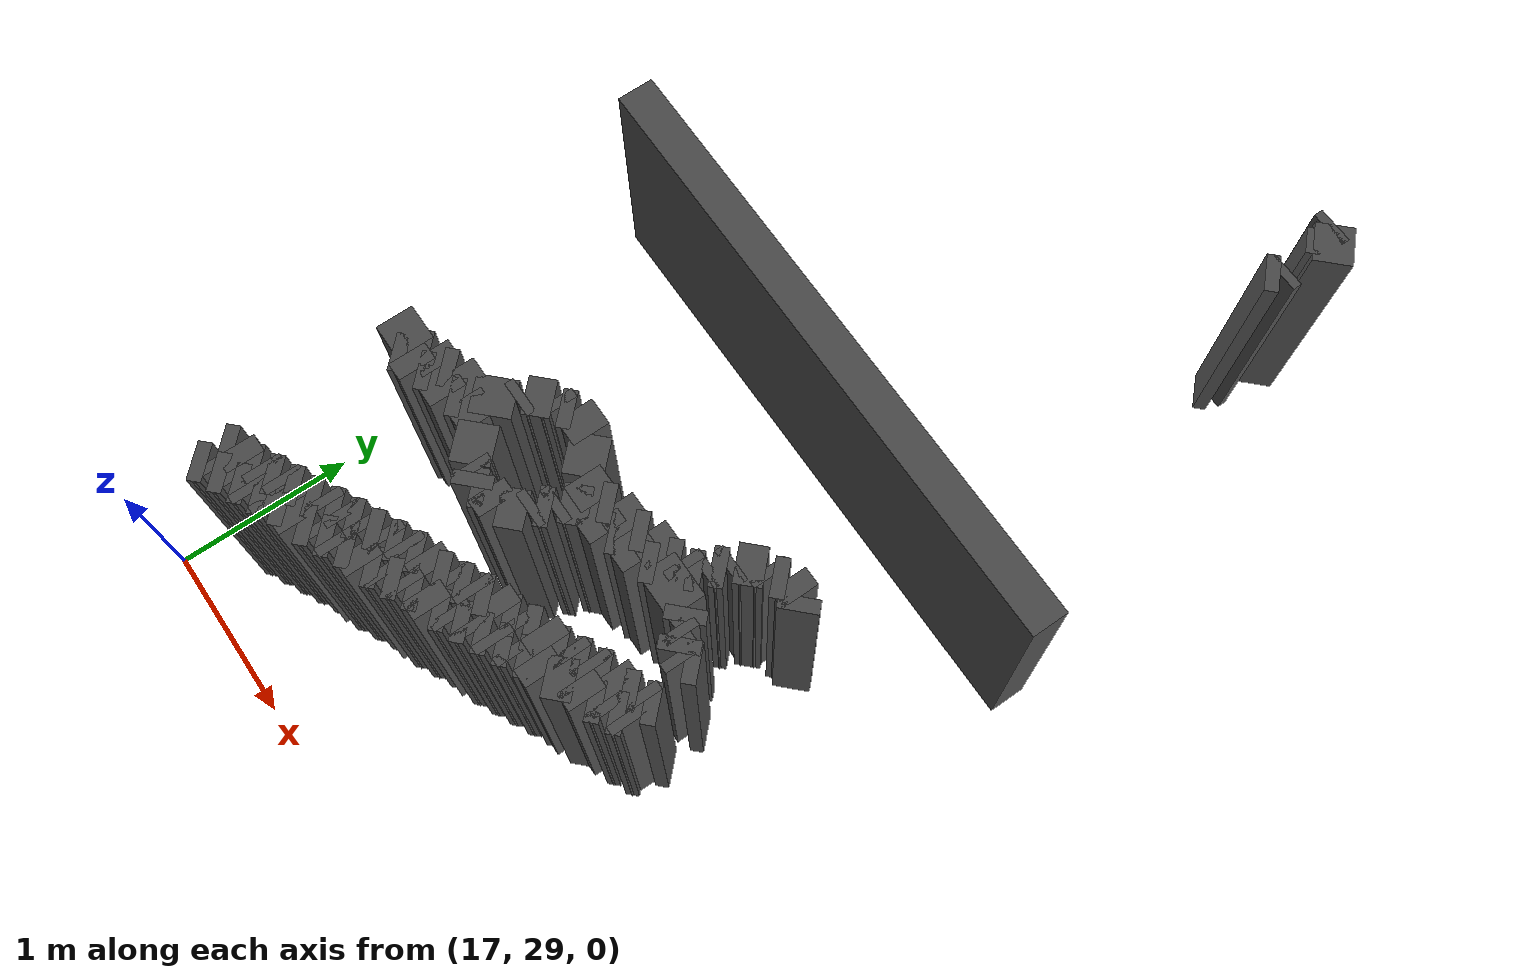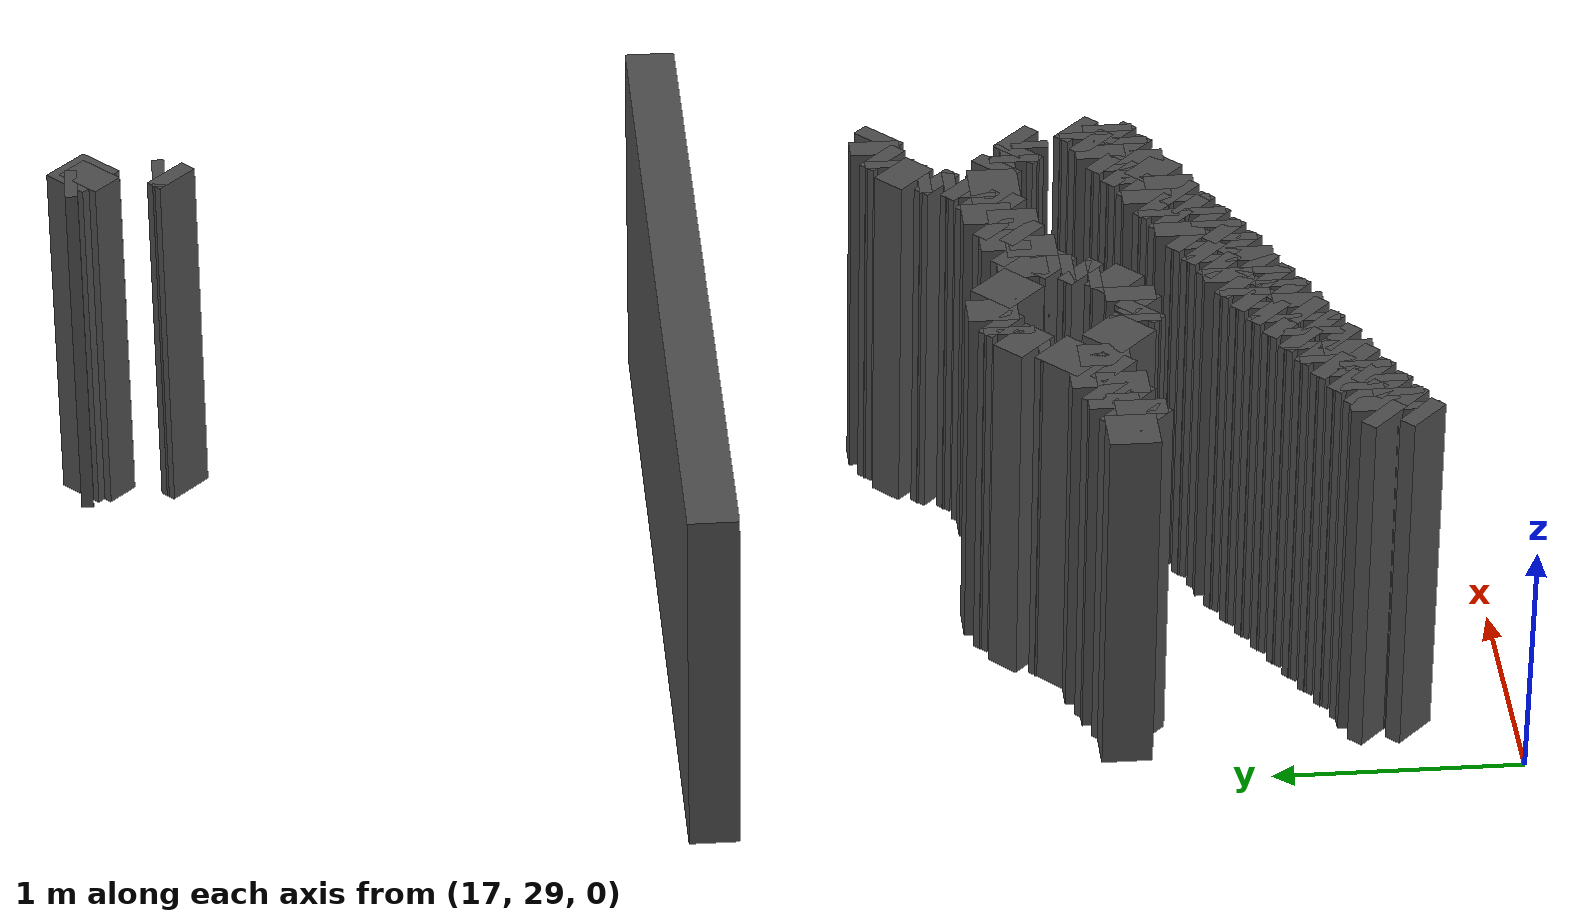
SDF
<sdf version="1.9">
 <model name="generated_walls">
  <static>true</static>
  <link name="wall_1_0">
   <pose>19.375 34.175 0.75 0 0 0.785</pose>
   <collision name="collision"><geometry><box><size>0.071 0.2 1.5</size></box></geometry></collision>
   <visual name="visual">
    <geometry><box><size>0.071 0.2 1.5</size></box></geometry>
    <material><ambient>0.3 0.3 0.3 1</ambient></material>
   </visual>
  </link>
  <link name="wall_1_1">
   <pose>19.400 34.225 0.75 0 0 1.571</pose>
   <collision name="collision"><geometry><box><size>0.050 0.2 1.5</size></box></geometry></collision>
   <visual name="visual">
    <geometry><box><size>0.050 0.2 1.5</size></box></geometry>
    <material><ambient>0.3 0.3 0.3 1</ambient></material>
   </visual>
  </link>
  <link name="wall_1_5">
   <pose>19.400 34.500 0.75 0 0 2.356</pose>
   <collision name="collision"><geometry><box><size>0.141 0.2 1.5</size></box></geometry></collision>
   <visual name="visual">
    <geometry><box><size>0.141 0.2 1.5</size></box></geometry>
    <material><ambient>0.3 0.3 0.3 1</ambient></material>
   </visual>
  </link>
  <link name="wall_1_6">
   <pose>19.350 34.575 0.75 0 0 1.571</pose>
   <collision name="collision"><geometry><box><size>0.050 0.2 1.5</size></box></geometry></collision>
   <visual name="visual">
    <geometry><box><size>0.050 0.2 1.5</size></box></geometry>
    <material><ambient>0.3 0.3 0.3 1</ambient></material>
   </visual>
  </link>
  <link name="wall_1_7">
   <pose>19.425 34.525 0.75 0 0 -0.785</pose>
   <collision name="collision"><geometry><box><size>0.212 0.2 1.5</size></box></geometry></collision>
   <visual name="visual">
    <geometry><box><size>0.212 0.2 1.5</size></box></geometry>
    <material><ambient>0.3 0.3 0.3 1</ambient></material>
   </visual>
  </link>
  <link name="wall_160_2">
   <pose>18.450 32.200 0.75 0 0 3.142</pose>
   <collision name="collision"><geometry><box><size>3.400 0.2 1.5</size></box></geometry></collision>
   <visual name="visual">
    <geometry><box><size>3.400 0.2 1.5</size></box></geometry>
    <material><ambient>0.3 0.3 0.3 1</ambient></material>
   </visual>
  </link>
  <link name="wall_161_399">
   <pose>17.250 30.550 0.75 0 0 0.000</pose>
   <collision name="collision"><geometry><box><size>0.200 0.2 1.5</size></box></geometry></collision>
   <visual name="visual">
    <geometry><box><size>0.200 0.2 1.5</size></box></geometry>
    <material><ambient>0.3 0.3 0.3 1</ambient></material>
   </visual>
  </link>
  <link name="wall_161_400">
   <pose>17.375 30.575 0.75 0 0 0.785</pose>
   <collision name="collision"><geometry><box><size>0.071 0.2 1.5</size></box></geometry></collision>
   <visual name="visual">
    <geometry><box><size>0.071 0.2 1.5</size></box></geometry>
    <material><ambient>0.3 0.3 0.3 1</ambient></material>
   </visual>
  </link>
  <link name="wall_161_401">
   <pose>17.450 30.600 0.75 0 0 0.000</pose>
   <collision name="collision"><geometry><box><size>0.100 0.2 1.5</size></box></geometry></collision>
   <visual name="visual">
    <geometry><box><size>0.100 0.2 1.5</size></box></geometry>
    <material><ambient>0.3 0.3 0.3 1</ambient></material>
   </visual>
  </link>
  <link name="wall_161_402">
   <pose>17.525 30.625 0.75 0 0 0.785</pose>
   <collision name="collision"><geometry><box><size>0.071 0.2 1.5</size></box></geometry></collision>
   <visual name="visual">
    <geometry><box><size>0.071 0.2 1.5</size></box></geometry>
    <material><ambient>0.3 0.3 0.3 1</ambient></material>
   </visual>
  </link>
  <link name="wall_161_403">
   <pose>17.625 30.650 0.75 0 0 0.000</pose>
   <collision name="collision"><geometry><box><size>0.150 0.2 1.5</size></box></geometry></collision>
   <visual name="visual">
    <geometry><box><size>0.150 0.2 1.5</size></box></geometry>
    <material><ambient>0.3 0.3 0.3 1</ambient></material>
   </visual>
  </link>
  <link name="wall_161_404">
   <pose>17.775 30.725 0.75 0 0 0.785</pose>
   <collision name="collision"><geometry><box><size>0.212 0.2 1.5</size></box></geometry></collision>
   <visual name="visual">
    <geometry><box><size>0.212 0.2 1.5</size></box></geometry>
    <material><ambient>0.3 0.3 0.3 1</ambient></material>
   </visual>
  </link>
  <link name="wall_161_405">
   <pose>17.850 30.825 0.75 0 0 1.571</pose>
   <collision name="collision"><geometry><box><size>0.050 0.2 1.5</size></box></geometry></collision>
   <visual name="visual">
    <geometry><box><size>0.050 0.2 1.5</size></box></geometry>
    <material><ambient>0.3 0.3 0.3 1</ambient></material>
   </visual>
  </link>
  <link name="wall_161_406">
   <pose>17.900 30.900 0.75 0 0 0.785</pose>
   <collision name="collision"><geometry><box><size>0.141 0.2 1.5</size></box></geometry></collision>
   <visual name="visual">
    <geometry><box><size>0.141 0.2 1.5</size></box></geometry>
    <material><ambient>0.3 0.3 0.3 1</ambient></material>
   </visual>
  </link>
  <link name="wall_161_407">
   <pose>17.975 30.950 0.75 0 0 0.000</pose>
   <collision name="collision"><geometry><box><size>0.050 0.2 1.5</size></box></geometry></collision>
   <visual name="visual">
    <geometry><box><size>0.050 0.2 1.5</size></box></geometry>
    <material><ambient>0.3 0.3 0.3 1</ambient></material>
   </visual>
  </link>
  <link name="wall_161_408">
   <pose>18.025 30.975 0.75 0 0 0.785</pose>
   <collision name="collision"><geometry><box><size>0.071 0.2 1.5</size></box></geometry></collision>
   <visual name="visual">
    <geometry><box><size>0.071 0.2 1.5</size></box></geometry>
    <material><ambient>0.3 0.3 0.3 1</ambient></material>
   </visual>
  </link>
  <link name="wall_161_409">
   <pose>18.125 31.000 0.75 0 0 0.000</pose>
   <collision name="collision"><geometry><box><size>0.150 0.2 1.5</size></box></geometry></collision>
   <visual name="visual">
    <geometry><box><size>0.150 0.2 1.5</size></box></geometry>
    <material><ambient>0.3 0.3 0.3 1</ambient></material>
   </visual>
  </link>
  <link name="wall_161_410">
   <pose>18.275 30.925 0.75 0 0 -0.785</pose>
   <collision name="collision"><geometry><box><size>0.212 0.2 1.5</size></box></geometry></collision>
   <visual name="visual">
    <geometry><box><size>0.212 0.2 1.5</size></box></geometry>
    <material><ambient>0.3 0.3 0.3 1</ambient></material>
   </visual>
  </link>
  <link name="wall_161_411">
   <pose>18.425 30.850 0.75 0 0 0.000</pose>
   <collision name="collision"><geometry><box><size>0.150 0.2 1.5</size></box></geometry></collision>
   <visual name="visual">
    <geometry><box><size>0.150 0.2 1.5</size></box></geometry>
    <material><ambient>0.3 0.3 0.3 1</ambient></material>
   </visual>
  </link>
  <link name="wall_161_412">
   <pose>18.525 30.875 0.75 0 0 0.785</pose>
   <collision name="collision"><geometry><box><size>0.071 0.2 1.5</size></box></geometry></collision>
   <visual name="visual">
    <geometry><box><size>0.071 0.2 1.5</size></box></geometry>
    <material><ambient>0.3 0.3 0.3 1</ambient></material>
   </visual>
  </link>
  <link name="wall_161_413">
   <pose>18.625 30.900 0.75 0 0 0.000</pose>
   <collision name="collision"><geometry><box><size>0.150 0.2 1.5</size></box></geometry></collision>
   <visual name="visual">
    <geometry><box><size>0.150 0.2 1.5</size></box></geometry>
    <material><ambient>0.3 0.3 0.3 1</ambient></material>
   </visual>
  </link>
  <link name="wall_161_414">
   <pose>18.725 30.925 0.75 0 0 0.785</pose>
   <collision name="collision"><geometry><box><size>0.071 0.2 1.5</size></box></geometry></collision>
   <visual name="visual">
    <geometry><box><size>0.071 0.2 1.5</size></box></geometry>
    <material><ambient>0.3 0.3 0.3 1</ambient></material>
   </visual>
  </link>
  <link name="wall_161_415">
   <pose>18.825 30.950 0.75 0 0 0.000</pose>
   <collision name="collision"><geometry><box><size>0.150 0.2 1.5</size></box></geometry></collision>
   <visual name="visual">
    <geometry><box><size>0.150 0.2 1.5</size></box></geometry>
    <material><ambient>0.3 0.3 0.3 1</ambient></material>
   </visual>
  </link>
  <link name="wall_161_416">
   <pose>18.925 30.975 0.75 0 0 0.785</pose>
   <collision name="collision"><geometry><box><size>0.071 0.2 1.5</size></box></geometry></collision>
   <visual name="visual">
    <geometry><box><size>0.071 0.2 1.5</size></box></geometry>
    <material><ambient>0.3 0.3 0.3 1</ambient></material>
   </visual>
  </link>
  <link name="wall_161_417">
   <pose>18.975 31.000 0.75 0 0 0.000</pose>
   <collision name="collision"><geometry><box><size>0.050 0.2 1.5</size></box></geometry></collision>
   <visual name="visual">
    <geometry><box><size>0.050 0.2 1.5</size></box></geometry>
    <material><ambient>0.3 0.3 0.3 1</ambient></material>
   </visual>
  </link>
  <link name="wall_161_418">
   <pose>19.025 31.025 0.75 0 0 0.785</pose>
   <collision name="collision"><geometry><box><size>0.071 0.2 1.5</size></box></geometry></collision>
   <visual name="visual">
    <geometry><box><size>0.071 0.2 1.5</size></box></geometry>
    <material><ambient>0.3 0.3 0.3 1</ambient></material>
   </visual>
  </link>
  <link name="wall_161_419">
   <pose>19.050 31.075 0.75 0 0 1.571</pose>
   <collision name="collision"><geometry><box><size>0.050 0.2 1.5</size></box></geometry></collision>
   <visual name="visual">
    <geometry><box><size>0.050 0.2 1.5</size></box></geometry>
    <material><ambient>0.3 0.3 0.3 1</ambient></material>
   </visual>
  </link>
  <link name="wall_161_420">
   <pose>19.075 31.125 0.75 0 0 0.785</pose>
   <collision name="collision"><geometry><box><size>0.071 0.2 1.5</size></box></geometry></collision>
   <visual name="visual">
    <geometry><box><size>0.071 0.2 1.5</size></box></geometry>
    <material><ambient>0.3 0.3 0.3 1</ambient></material>
   </visual>
  </link>
  <link name="wall_161_421">
   <pose>19.100 31.175 0.75 0 0 1.571</pose>
   <collision name="collision"><geometry><box><size>0.050 0.2 1.5</size></box></geometry></collision>
   <visual name="visual">
    <geometry><box><size>0.050 0.2 1.5</size></box></geometry>
    <material><ambient>0.3 0.3 0.3 1</ambient></material>
   </visual>
  </link>
  <link name="wall_161_422">
   <pose>19.150 31.250 0.75 0 0 0.785</pose>
   <collision name="collision"><geometry><box><size>0.141 0.2 1.5</size></box></geometry></collision>
   <visual name="visual">
    <geometry><box><size>0.141 0.2 1.5</size></box></geometry>
    <material><ambient>0.3 0.3 0.3 1</ambient></material>
   </visual>
  </link>
  <link name="wall_161_423">
   <pose>19.225 31.300 0.75 0 0 0.000</pose>
   <collision name="collision"><geometry><box><size>0.050 0.2 1.5</size></box></geometry></collision>
   <visual name="visual">
    <geometry><box><size>0.050 0.2 1.5</size></box></geometry>
    <material><ambient>0.3 0.3 0.3 1</ambient></material>
   </visual>
  </link>
  <link name="wall_161_424">
   <pose>19.275 31.325 0.75 0 0 0.785</pose>
   <collision name="collision"><geometry><box><size>0.071 0.2 1.5</size></box></geometry></collision>
   <visual name="visual">
    <geometry><box><size>0.071 0.2 1.5</size></box></geometry>
    <material><ambient>0.3 0.3 0.3 1</ambient></material>
   </visual>
  </link>
  <link name="wall_161_425">
   <pose>19.350 31.350 0.75 0 0 0.000</pose>
   <collision name="collision"><geometry><box><size>0.100 0.2 1.5</size></box></geometry></collision>
   <visual name="visual">
    <geometry><box><size>0.100 0.2 1.5</size></box></geometry>
    <material><ambient>0.3 0.3 0.3 1</ambient></material>
   </visual>
  </link>
  <link name="wall_161_426">
   <pose>19.425 31.325 0.75 0 0 -0.785</pose>
   <collision name="collision"><geometry><box><size>0.071 0.2 1.5</size></box></geometry></collision>
   <visual name="visual">
    <geometry><box><size>0.071 0.2 1.5</size></box></geometry>
    <material><ambient>0.3 0.3 0.3 1</ambient></material>
   </visual>
  </link>
  <link name="wall_161_437">
   <pose>19.375 30.775 0.75 0 0 -2.356</pose>
   <collision name="collision"><geometry><box><size>0.071 0.2 1.5</size></box></geometry></collision>
   <visual name="visual">
    <geometry><box><size>0.071 0.2 1.5</size></box></geometry>
    <material><ambient>0.3 0.3 0.3 1</ambient></material>
   </visual>
  </link>
  <link name="wall_161_438">
   <pose>19.325 30.750 0.75 0 0 3.142</pose>
   <collision name="collision"><geometry><box><size>0.050 0.2 1.5</size></box></geometry></collision>
   <visual name="visual">
    <geometry><box><size>0.050 0.2 1.5</size></box></geometry>
    <material><ambient>0.3 0.3 0.3 1</ambient></material>
   </visual>
  </link>
  <link name="wall_161_439">
   <pose>19.275 30.775 0.75 0 0 2.356</pose>
   <collision name="collision"><geometry><box><size>0.071 0.2 1.5</size></box></geometry></collision>
   <visual name="visual">
    <geometry><box><size>0.071 0.2 1.5</size></box></geometry>
    <material><ambient>0.3 0.3 0.3 1</ambient></material>
   </visual>
  </link>
  <link name="wall_161_440">
   <pose>19.225 30.800 0.75 0 0 3.142</pose>
   <collision name="collision"><geometry><box><size>0.050 0.2 1.5</size></box></geometry></collision>
   <visual name="visual">
    <geometry><box><size>0.050 0.2 1.5</size></box></geometry>
    <material><ambient>0.3 0.3 0.3 1</ambient></material>
   </visual>
  </link>
  <link name="wall_161_441">
   <pose>19.200 30.825 0.75 0 0 1.571</pose>
   <collision name="collision"><geometry><box><size>0.050 0.2 1.5</size></box></geometry></collision>
   <visual name="visual">
    <geometry><box><size>0.050 0.2 1.5</size></box></geometry>
    <material><ambient>0.3 0.3 0.3 1</ambient></material>
   </visual>
  </link>
  <link name="wall_161_442">
   <pose>19.175 30.875 0.75 0 0 2.356</pose>
   <collision name="collision"><geometry><box><size>0.071 0.2 1.5</size></box></geometry></collision>
   <visual name="visual">
    <geometry><box><size>0.071 0.2 1.5</size></box></geometry>
    <material><ambient>0.3 0.3 0.3 1</ambient></material>
   </visual>
  </link>
  <link name="wall_161_443">
   <pose>19.025 30.900 0.75 0 0 3.142</pose>
   <collision name="collision"><geometry><box><size>0.250 0.2 1.5</size></box></geometry></collision>
   <visual name="visual">
    <geometry><box><size>0.250 0.2 1.5</size></box></geometry>
    <material><ambient>0.3 0.3 0.3 1</ambient></material>
   </visual>
  </link>
  <link name="wall_161_444">
   <pose>18.875 30.875 0.75 0 0 -2.356</pose>
   <collision name="collision"><geometry><box><size>0.071 0.2 1.5</size></box></geometry></collision>
   <visual name="visual">
    <geometry><box><size>0.071 0.2 1.5</size></box></geometry>
    <material><ambient>0.3 0.3 0.3 1</ambient></material>
   </visual>
  </link>
  <link name="wall_161_445">
   <pose>18.775 30.850 0.75 0 0 3.142</pose>
   <collision name="collision"><geometry><box><size>0.150 0.2 1.5</size></box></geometry></collision>
   <visual name="visual">
    <geometry><box><size>0.150 0.2 1.5</size></box></geometry>
    <material><ambient>0.3 0.3 0.3 1</ambient></material>
   </visual>
  </link>
  <link name="wall_161_446">
   <pose>18.675 30.825 0.75 0 0 -2.356</pose>
   <collision name="collision"><geometry><box><size>0.071 0.2 1.5</size></box></geometry></collision>
   <visual name="visual">
    <geometry><box><size>0.071 0.2 1.5</size></box></geometry>
    <material><ambient>0.3 0.3 0.3 1</ambient></material>
   </visual>
  </link>
  <link name="wall_161_447">
   <pose>18.575 30.800 0.75 0 0 3.142</pose>
   <collision name="collision"><geometry><box><size>0.150 0.2 1.5</size></box></geometry></collision>
   <visual name="visual">
    <geometry><box><size>0.150 0.2 1.5</size></box></geometry>
    <material><ambient>0.3 0.3 0.3 1</ambient></material>
   </visual>
  </link>
  <link name="wall_161_448">
   <pose>18.450 30.750 0.75 0 0 -2.356</pose>
   <collision name="collision"><geometry><box><size>0.141 0.2 1.5</size></box></geometry></collision>
   <visual name="visual">
    <geometry><box><size>0.141 0.2 1.5</size></box></geometry>
    <material><ambient>0.3 0.3 0.3 1</ambient></material>
   </visual>
  </link>
  <link name="wall_161_449">
   <pose>18.400 30.675 0.75 0 0 -1.571</pose>
   <collision name="collision"><geometry><box><size>0.050 0.2 1.5</size></box></geometry></collision>
   <visual name="visual">
    <geometry><box><size>0.050 0.2 1.5</size></box></geometry>
    <material><ambient>0.3 0.3 0.3 1</ambient></material>
   </visual>
  </link>
  <link name="wall_161_450">
   <pose>18.375 30.625 0.75 0 0 -2.356</pose>
   <collision name="collision"><geometry><box><size>0.071 0.2 1.5</size></box></geometry></collision>
   <visual name="visual">
    <geometry><box><size>0.071 0.2 1.5</size></box></geometry>
    <material><ambient>0.3 0.3 0.3 1</ambient></material>
   </visual>
  </link>
  <link name="wall_161_451">
   <pose>18.350 30.575 0.75 0 0 -1.571</pose>
   <collision name="collision"><geometry><box><size>0.050 0.2 1.5</size></box></geometry></collision>
   <visual name="visual">
    <geometry><box><size>0.050 0.2 1.5</size></box></geometry>
    <material><ambient>0.3 0.3 0.3 1</ambient></material>
   </visual>
  </link>
  <link name="wall_161_452">
   <pose>18.300 30.500 0.75 0 0 -2.356</pose>
   <collision name="collision"><geometry><box><size>0.141 0.2 1.5</size></box></geometry></collision>
   <visual name="visual">
    <geometry><box><size>0.141 0.2 1.5</size></box></geometry>
    <material><ambient>0.3 0.3 0.3 1</ambient></material>
   </visual>
  </link>
  <link name="wall_161_453">
   <pose>18.200 30.450 0.75 0 0 3.142</pose>
   <collision name="collision"><geometry><box><size>0.100 0.2 1.5</size></box></geometry></collision>
   <visual name="visual">
    <geometry><box><size>0.100 0.2 1.5</size></box></geometry>
    <material><ambient>0.3 0.3 0.3 1</ambient></material>
   </visual>
  </link>
  <link name="wall_161_454">
   <pose>18.125 30.425 0.75 0 0 -2.356</pose>
   <collision name="collision"><geometry><box><size>0.071 0.2 1.5</size></box></geometry></collision>
   <visual name="visual">
    <geometry><box><size>0.071 0.2 1.5</size></box></geometry>
    <material><ambient>0.3 0.3 0.3 1</ambient></material>
   </visual>
  </link>
  <link name="wall_161_455">
   <pose>18.075 30.425 0.75 0 0 2.356</pose>
   <collision name="collision"><geometry><box><size>0.071 0.2 1.5</size></box></geometry></collision>
   <visual name="visual">
    <geometry><box><size>0.071 0.2 1.5</size></box></geometry>
    <material><ambient>0.3 0.3 0.3 1</ambient></material>
   </visual>
  </link>
  <link name="wall_161_456">
   <pose>18.025 30.450 0.75 0 0 3.142</pose>
   <collision name="collision"><geometry><box><size>0.050 0.2 1.5</size></box></geometry></collision>
   <visual name="visual">
    <geometry><box><size>0.050 0.2 1.5</size></box></geometry>
    <material><ambient>0.3 0.3 0.3 1</ambient></material>
   </visual>
  </link>
  <link name="wall_161_457">
   <pose>17.925 30.525 0.75 0 0 2.356</pose>
   <collision name="collision"><geometry><box><size>0.212 0.2 1.5</size></box></geometry></collision>
   <visual name="visual">
    <geometry><box><size>0.212 0.2 1.5</size></box></geometry>
    <material><ambient>0.3 0.3 0.3 1</ambient></material>
   </visual>
  </link>
  <link name="wall_161_458">
   <pose>17.775 30.600 0.75 0 0 3.142</pose>
   <collision name="collision"><geometry><box><size>0.150 0.2 1.5</size></box></geometry></collision>
   <visual name="visual">
    <geometry><box><size>0.150 0.2 1.5</size></box></geometry>
    <material><ambient>0.3 0.3 0.3 1</ambient></material>
   </visual>
  </link>
  <link name="wall_161_459">
   <pose>17.675 30.575 0.75 0 0 -2.356</pose>
   <collision name="collision"><geometry><box><size>0.071 0.2 1.5</size></box></geometry></collision>
   <visual name="visual">
    <geometry><box><size>0.071 0.2 1.5</size></box></geometry>
    <material><ambient>0.3 0.3 0.3 1</ambient></material>
   </visual>
  </link>
  <link name="wall_161_460">
   <pose>17.575 30.550 0.75 0 0 3.142</pose>
   <collision name="collision"><geometry><box><size>0.150 0.2 1.5</size></box></geometry></collision>
   <visual name="visual">
    <geometry><box><size>0.150 0.2 1.5</size></box></geometry>
    <material><ambient>0.3 0.3 0.3 1</ambient></material>
   </visual>
  </link>
  <link name="wall_161_461">
   <pose>17.475 30.525 0.75 0 0 -2.356</pose>
   <collision name="collision"><geometry><box><size>0.071 0.2 1.5</size></box></geometry></collision>
   <visual name="visual">
    <geometry><box><size>0.071 0.2 1.5</size></box></geometry>
    <material><ambient>0.3 0.3 0.3 1</ambient></material>
   </visual>
  </link>
  <link name="wall_161_462">
   <pose>17.400 30.500 0.75 0 0 3.142</pose>
   <collision name="collision"><geometry><box><size>0.100 0.2 1.5</size></box></geometry></collision>
   <visual name="visual">
    <geometry><box><size>0.100 0.2 1.5</size></box></geometry>
    <material><ambient>0.3 0.3 0.3 1</ambient></material>
   </visual>
  </link>
  <link name="wall_161_463">
   <pose>17.325 30.475 0.75 0 0 -2.356</pose>
   <collision name="collision"><geometry><box><size>0.071 0.2 1.5</size></box></geometry></collision>
   <visual name="visual">
    <geometry><box><size>0.071 0.2 1.5</size></box></geometry>
    <material><ambient>0.3 0.3 0.3 1</ambient></material>
   </visual>
  </link>
  <link name="wall_161_569">
   <pose>17.275 29.575 0.75 0 0 0.785</pose>
   <collision name="collision"><geometry><box><size>0.071 0.2 1.5</size></box></geometry></collision>
   <visual name="visual">
    <geometry><box><size>0.071 0.2 1.5</size></box></geometry>
    <material><ambient>0.3 0.3 0.3 1</ambient></material>
   </visual>
  </link>
  <link name="wall_161_570">
   <pose>17.350 29.600 0.75 0 0 0.000</pose>
   <collision name="collision"><geometry><box><size>0.100 0.2 1.5</size></box></geometry></collision>
   <visual name="visual">
    <geometry><box><size>0.100 0.2 1.5</size></box></geometry>
    <material><ambient>0.3 0.3 0.3 1</ambient></material>
   </visual>
  </link>
  <link name="wall_161_571">
   <pose>17.425 29.625 0.75 0 0 0.785</pose>
   <collision name="collision"><geometry><box><size>0.071 0.2 1.5</size></box></geometry></collision>
   <visual name="visual">
    <geometry><box><size>0.071 0.2 1.5</size></box></geometry>
    <material><ambient>0.3 0.3 0.3 1</ambient></material>
   </visual>
  </link>
  <link name="wall_161_572">
   <pose>17.475 29.650 0.75 0 0 0.000</pose>
   <collision name="collision"><geometry><box><size>0.050 0.2 1.5</size></box></geometry></collision>
   <visual name="visual">
    <geometry><box><size>0.050 0.2 1.5</size></box></geometry>
    <material><ambient>0.3 0.3 0.3 1</ambient></material>
   </visual>
  </link>
  <link name="wall_161_573">
   <pose>17.525 29.675 0.75 0 0 0.785</pose>
   <collision name="collision"><geometry><box><size>0.071 0.2 1.5</size></box></geometry></collision>
   <visual name="visual">
    <geometry><box><size>0.071 0.2 1.5</size></box></geometry>
    <material><ambient>0.3 0.3 0.3 1</ambient></material>
   </visual>
  </link>
  <link name="wall_161_574">
   <pose>17.575 29.700 0.75 0 0 0.000</pose>
   <collision name="collision"><geometry><box><size>0.050 0.2 1.5</size></box></geometry></collision>
   <visual name="visual">
    <geometry><box><size>0.050 0.2 1.5</size></box></geometry>
    <material><ambient>0.3 0.3 0.3 1</ambient></material>
   </visual>
  </link>
  <link name="wall_161_575">
   <pose>17.625 29.725 0.75 0 0 0.785</pose>
   <collision name="collision"><geometry><box><size>0.071 0.2 1.5</size></box></geometry></collision>
   <visual name="visual">
    <geometry><box><size>0.071 0.2 1.5</size></box></geometry>
    <material><ambient>0.3 0.3 0.3 1</ambient></material>
   </visual>
  </link>
  <link name="wall_161_576">
   <pose>17.675 29.750 0.75 0 0 0.000</pose>
   <collision name="collision"><geometry><box><size>0.050 0.2 1.5</size></box></geometry></collision>
   <visual name="visual">
    <geometry><box><size>0.050 0.2 1.5</size></box></geometry>
    <material><ambient>0.3 0.3 0.3 1</ambient></material>
   </visual>
  </link>
  <link name="wall_161_577">
   <pose>17.725 29.775 0.75 0 0 0.785</pose>
   <collision name="collision"><geometry><box><size>0.071 0.2 1.5</size></box></geometry></collision>
   <visual name="visual">
    <geometry><box><size>0.071 0.2 1.5</size></box></geometry>
    <material><ambient>0.3 0.3 0.3 1</ambient></material>
   </visual>
  </link>
  <link name="wall_161_578">
   <pose>17.775 29.800 0.75 0 0 0.000</pose>
   <collision name="collision"><geometry><box><size>0.050 0.2 1.5</size></box></geometry></collision>
   <visual name="visual">
    <geometry><box><size>0.050 0.2 1.5</size></box></geometry>
    <material><ambient>0.3 0.3 0.3 1</ambient></material>
   </visual>
  </link>
  <link name="wall_161_579">
   <pose>17.825 29.825 0.75 0 0 0.785</pose>
   <collision name="collision"><geometry><box><size>0.071 0.2 1.5</size></box></geometry></collision>
   <visual name="visual">
    <geometry><box><size>0.071 0.2 1.5</size></box></geometry>
    <material><ambient>0.3 0.3 0.3 1</ambient></material>
   </visual>
  </link>
  <link name="wall_161_580">
   <pose>17.875 29.850 0.75 0 0 0.000</pose>
   <collision name="collision"><geometry><box><size>0.050 0.2 1.5</size></box></geometry></collision>
   <visual name="visual">
    <geometry><box><size>0.050 0.2 1.5</size></box></geometry>
    <material><ambient>0.3 0.3 0.3 1</ambient></material>
   </visual>
  </link>
  <link name="wall_161_581">
   <pose>17.925 29.875 0.75 0 0 0.785</pose>
   <collision name="collision"><geometry><box><size>0.071 0.2 1.5</size></box></geometry></collision>
   <visual name="visual">
    <geometry><box><size>0.071 0.2 1.5</size></box></geometry>
    <material><ambient>0.3 0.3 0.3 1</ambient></material>
   </visual>
  </link>
  <link name="wall_161_582">
   <pose>17.975 29.900 0.75 0 0 0.000</pose>
   <collision name="collision"><geometry><box><size>0.050 0.2 1.5</size></box></geometry></collision>
   <visual name="visual">
    <geometry><box><size>0.050 0.2 1.5</size></box></geometry>
    <material><ambient>0.3 0.3 0.3 1</ambient></material>
   </visual>
  </link>
  <link name="wall_161_583">
   <pose>18.025 29.925 0.75 0 0 0.785</pose>
   <collision name="collision"><geometry><box><size>0.071 0.2 1.5</size></box></geometry></collision>
   <visual name="visual">
    <geometry><box><size>0.071 0.2 1.5</size></box></geometry>
    <material><ambient>0.3 0.3 0.3 1</ambient></material>
   </visual>
  </link>
  <link name="wall_161_584">
   <pose>18.075 29.950 0.75 0 0 0.000</pose>
   <collision name="collision"><geometry><box><size>0.050 0.2 1.5</size></box></geometry></collision>
   <visual name="visual">
    <geometry><box><size>0.050 0.2 1.5</size></box></geometry>
    <material><ambient>0.3 0.3 0.3 1</ambient></material>
   </visual>
  </link>
  <link name="wall_161_585">
   <pose>18.125 29.975 0.75 0 0 0.785</pose>
   <collision name="collision"><geometry><box><size>0.071 0.2 1.5</size></box></geometry></collision>
   <visual name="visual">
    <geometry><box><size>0.071 0.2 1.5</size></box></geometry>
    <material><ambient>0.3 0.3 0.3 1</ambient></material>
   </visual>
  </link>
  <link name="wall_161_586">
   <pose>18.175 30.000 0.75 0 0 0.000</pose>
   <collision name="collision"><geometry><box><size>0.050 0.2 1.5</size></box></geometry></collision>
   <visual name="visual">
    <geometry><box><size>0.050 0.2 1.5</size></box></geometry>
    <material><ambient>0.3 0.3 0.3 1</ambient></material>
   </visual>
  </link>
  <link name="wall_161_587">
   <pose>18.225 30.025 0.75 0 0 0.785</pose>
   <collision name="collision"><geometry><box><size>0.071 0.2 1.5</size></box></geometry></collision>
   <visual name="visual">
    <geometry><box><size>0.071 0.2 1.5</size></box></geometry>
    <material><ambient>0.3 0.3 0.3 1</ambient></material>
   </visual>
  </link>
  <link name="wall_161_588">
   <pose>18.300 30.050 0.75 0 0 0.000</pose>
   <collision name="collision"><geometry><box><size>0.100 0.2 1.5</size></box></geometry></collision>
   <visual name="visual">
    <geometry><box><size>0.100 0.2 1.5</size></box></geometry>
    <material><ambient>0.3 0.3 0.3 1</ambient></material>
   </visual>
  </link>
  <link name="wall_161_589">
   <pose>18.375 30.075 0.75 0 0 0.785</pose>
   <collision name="collision"><geometry><box><size>0.071 0.2 1.5</size></box></geometry></collision>
   <visual name="visual">
    <geometry><box><size>0.071 0.2 1.5</size></box></geometry>
    <material><ambient>0.3 0.3 0.3 1</ambient></material>
   </visual>
  </link>
  <link name="wall_161_590">
   <pose>18.425 30.100 0.75 0 0 0.000</pose>
   <collision name="collision"><geometry><box><size>0.050 0.2 1.5</size></box></geometry></collision>
   <visual name="visual">
    <geometry><box><size>0.050 0.2 1.5</size></box></geometry>
    <material><ambient>0.3 0.3 0.3 1</ambient></material>
   </visual>
  </link>
  <link name="wall_161_591">
   <pose>18.475 30.125 0.75 0 0 0.785</pose>
   <collision name="collision"><geometry><box><size>0.071 0.2 1.5</size></box></geometry></collision>
   <visual name="visual">
    <geometry><box><size>0.071 0.2 1.5</size></box></geometry>
    <material><ambient>0.3 0.3 0.3 1</ambient></material>
   </visual>
  </link>
  <link name="wall_161_592">
   <pose>18.525 30.150 0.75 0 0 0.000</pose>
   <collision name="collision"><geometry><box><size>0.050 0.2 1.5</size></box></geometry></collision>
   <visual name="visual">
    <geometry><box><size>0.050 0.2 1.5</size></box></geometry>
    <material><ambient>0.3 0.3 0.3 1</ambient></material>
   </visual>
  </link>
  <link name="wall_161_593">
   <pose>18.575 30.175 0.75 0 0 0.785</pose>
   <collision name="collision"><geometry><box><size>0.071 0.2 1.5</size></box></geometry></collision>
   <visual name="visual">
    <geometry><box><size>0.071 0.2 1.5</size></box></geometry>
    <material><ambient>0.3 0.3 0.3 1</ambient></material>
   </visual>
  </link>
  <link name="wall_161_594">
   <pose>18.650 30.200 0.75 0 0 0.000</pose>
   <collision name="collision"><geometry><box><size>0.100 0.2 1.5</size></box></geometry></collision>
   <visual name="visual">
    <geometry><box><size>0.100 0.2 1.5</size></box></geometry>
    <material><ambient>0.3 0.3 0.3 1</ambient></material>
   </visual>
  </link>
  <link name="wall_161_595">
   <pose>18.725 30.225 0.75 0 0 0.785</pose>
   <collision name="collision"><geometry><box><size>0.071 0.2 1.5</size></box></geometry></collision>
   <visual name="visual">
    <geometry><box><size>0.071 0.2 1.5</size></box></geometry>
    <material><ambient>0.3 0.3 0.3 1</ambient></material>
   </visual>
  </link>
  <link name="wall_161_596">
   <pose>18.775 30.250 0.75 0 0 0.000</pose>
   <collision name="collision"><geometry><box><size>0.050 0.2 1.5</size></box></geometry></collision>
   <visual name="visual">
    <geometry><box><size>0.050 0.2 1.5</size></box></geometry>
    <material><ambient>0.3 0.3 0.3 1</ambient></material>
   </visual>
  </link>
  <link name="wall_161_597">
   <pose>18.825 30.275 0.75 0 0 0.785</pose>
   <collision name="collision"><geometry><box><size>0.071 0.2 1.5</size></box></geometry></collision>
   <visual name="visual">
    <geometry><box><size>0.071 0.2 1.5</size></box></geometry>
    <material><ambient>0.3 0.3 0.3 1</ambient></material>
   </visual>
  </link>
  <link name="wall_161_598">
   <pose>18.900 30.300 0.75 0 0 0.000</pose>
   <collision name="collision"><geometry><box><size>0.100 0.2 1.5</size></box></geometry></collision>
   <visual name="visual">
    <geometry><box><size>0.100 0.2 1.5</size></box></geometry>
    <material><ambient>0.3 0.3 0.3 1</ambient></material>
   </visual>
  </link>
  <link name="wall_161_599">
   <pose>18.975 30.325 0.75 0 0 0.785</pose>
   <collision name="collision"><geometry><box><size>0.071 0.2 1.5</size></box></geometry></collision>
   <visual name="visual">
    <geometry><box><size>0.071 0.2 1.5</size></box></geometry>
    <material><ambient>0.3 0.3 0.3 1</ambient></material>
   </visual>
  </link>
  <link name="wall_161_600">
   <pose>19.025 30.350 0.75 0 0 0.000</pose>
   <collision name="collision"><geometry><box><size>0.050 0.2 1.5</size></box></geometry></collision>
   <visual name="visual">
    <geometry><box><size>0.050 0.2 1.5</size></box></geometry>
    <material><ambient>0.3 0.3 0.3 1</ambient></material>
   </visual>
  </link>
  <link name="wall_161_601">
   <pose>19.075 30.375 0.75 0 0 0.785</pose>
   <collision name="collision"><geometry><box><size>0.071 0.2 1.5</size></box></geometry></collision>
   <visual name="visual">
    <geometry><box><size>0.071 0.2 1.5</size></box></geometry>
    <material><ambient>0.3 0.3 0.3 1</ambient></material>
   </visual>
  </link>
  <link name="wall_161_602">
   <pose>19.125 30.400 0.75 0 0 0.000</pose>
   <collision name="collision"><geometry><box><size>0.050 0.2 1.5</size></box></geometry></collision>
   <visual name="visual">
    <geometry><box><size>0.050 0.2 1.5</size></box></geometry>
    <material><ambient>0.3 0.3 0.3 1</ambient></material>
   </visual>
  </link>
  <link name="wall_161_603">
   <pose>19.175 30.425 0.75 0 0 0.785</pose>
   <collision name="collision"><geometry><box><size>0.071 0.2 1.5</size></box></geometry></collision>
   <visual name="visual">
    <geometry><box><size>0.071 0.2 1.5</size></box></geometry>
    <material><ambient>0.3 0.3 0.3 1</ambient></material>
   </visual>
  </link>
  <link name="wall_161_604">
   <pose>19.250 30.450 0.75 0 0 0.000</pose>
   <collision name="collision"><geometry><box><size>0.100 0.2 1.5</size></box></geometry></collision>
   <visual name="visual">
    <geometry><box><size>0.100 0.2 1.5</size></box></geometry>
    <material><ambient>0.3 0.3 0.3 1</ambient></material>
   </visual>
  </link>
  <link name="wall_161_605">
   <pose>19.325 30.475 0.75 0 0 0.785</pose>
   <collision name="collision"><geometry><box><size>0.071 0.2 1.5</size></box></geometry></collision>
   <visual name="visual">
    <geometry><box><size>0.071 0.2 1.5</size></box></geometry>
    <material><ambient>0.3 0.3 0.3 1</ambient></material>
   </visual>
  </link>
  <link name="wall_161_606">
   <pose>19.375 30.500 0.75 0 0 0.000</pose>
   <collision name="collision"><geometry><box><size>0.050 0.2 1.5</size></box></geometry></collision>
   <visual name="visual">
    <geometry><box><size>0.050 0.2 1.5</size></box></geometry>
    <material><ambient>0.3 0.3 0.3 1</ambient></material>
   </visual>
  </link>
  <link name="wall_161_607">
   <pose>19.425 30.525 0.75 0 0 0.785</pose>
   <collision name="collision"><geometry><box><size>0.071 0.2 1.5</size></box></geometry></collision>
   <visual name="visual">
    <geometry><box><size>0.071 0.2 1.5</size></box></geometry>
    <material><ambient>0.3 0.3 0.3 1</ambient></material>
   </visual>
  </link>
  <link name="wall_161_625">
   <pose>19.425 30.400 0.75 0 0 3.142</pose>
   <collision name="collision"><geometry><box><size>0.050 0.2 1.5</size></box></geometry></collision>
   <visual name="visual">
    <geometry><box><size>0.050 0.2 1.5</size></box></geometry>
    <material><ambient>0.3 0.3 0.3 1</ambient></material>
   </visual>
  </link>
  <link name="wall_161_626">
   <pose>19.375 30.375 0.75 0 0 -2.356</pose>
   <collision name="collision"><geometry><box><size>0.071 0.2 1.5</size></box></geometry></collision>
   <visual name="visual">
    <geometry><box><size>0.071 0.2 1.5</size></box></geometry>
    <material><ambient>0.3 0.3 0.3 1</ambient></material>
   </visual>
  </link>
  <link name="wall_161_627">
   <pose>19.325 30.350 0.75 0 0 3.142</pose>
   <collision name="collision"><geometry><box><size>0.050 0.2 1.5</size></box></geometry></collision>
   <visual name="visual">
    <geometry><box><size>0.050 0.2 1.5</size></box></geometry>
    <material><ambient>0.3 0.3 0.3 1</ambient></material>
   </visual>
  </link>
  <link name="wall_161_628">
   <pose>19.275 30.325 0.75 0 0 -2.356</pose>
   <collision name="collision"><geometry><box><size>0.071 0.2 1.5</size></box></geometry></collision>
   <visual name="visual">
    <geometry><box><size>0.071 0.2 1.5</size></box></geometry>
    <material><ambient>0.3 0.3 0.3 1</ambient></material>
   </visual>
  </link>
  <link name="wall_161_629">
   <pose>19.200 30.300 0.75 0 0 3.142</pose>
   <collision name="collision"><geometry><box><size>0.100 0.2 1.5</size></box></geometry></collision>
   <visual name="visual">
    <geometry><box><size>0.100 0.2 1.5</size></box></geometry>
    <material><ambient>0.3 0.3 0.3 1</ambient></material>
   </visual>
  </link>
  <link name="wall_161_630">
   <pose>19.100 30.250 0.75 0 0 -2.356</pose>
   <collision name="collision"><geometry><box><size>0.141 0.2 1.5</size></box></geometry></collision>
   <visual name="visual">
    <geometry><box><size>0.141 0.2 1.5</size></box></geometry>
    <material><ambient>0.3 0.3 0.3 1</ambient></material>
   </visual>
  </link>
  <link name="wall_161_631">
   <pose>19.000 30.200 0.75 0 0 3.142</pose>
   <collision name="collision"><geometry><box><size>0.100 0.2 1.5</size></box></geometry></collision>
   <visual name="visual">
    <geometry><box><size>0.100 0.2 1.5</size></box></geometry>
    <material><ambient>0.3 0.3 0.3 1</ambient></material>
   </visual>
  </link>
  <link name="wall_161_632">
   <pose>18.925 30.175 0.75 0 0 -2.356</pose>
   <collision name="collision"><geometry><box><size>0.071 0.2 1.5</size></box></geometry></collision>
   <visual name="visual">
    <geometry><box><size>0.071 0.2 1.5</size></box></geometry>
    <material><ambient>0.3 0.3 0.3 1</ambient></material>
   </visual>
  </link>
  <link name="wall_161_633">
   <pose>18.875 30.150 0.75 0 0 3.142</pose>
   <collision name="collision"><geometry><box><size>0.050 0.2 1.5</size></box></geometry></collision>
   <visual name="visual">
    <geometry><box><size>0.050 0.2 1.5</size></box></geometry>
    <material><ambient>0.3 0.3 0.3 1</ambient></material>
   </visual>
  </link>
  <link name="wall_161_634">
   <pose>18.825 30.125 0.75 0 0 -2.356</pose>
   <collision name="collision"><geometry><box><size>0.071 0.2 1.5</size></box></geometry></collision>
   <visual name="visual">
    <geometry><box><size>0.071 0.2 1.5</size></box></geometry>
    <material><ambient>0.3 0.3 0.3 1</ambient></material>
   </visual>
  </link>
  <link name="wall_161_635">
   <pose>18.775 30.100 0.75 0 0 3.142</pose>
   <collision name="collision"><geometry><box><size>0.050 0.2 1.5</size></box></geometry></collision>
   <visual name="visual">
    <geometry><box><size>0.050 0.2 1.5</size></box></geometry>
    <material><ambient>0.3 0.3 0.3 1</ambient></material>
   </visual>
  </link>
  <link name="wall_161_636">
   <pose>18.725 30.075 0.75 0 0 -2.356</pose>
   <collision name="collision"><geometry><box><size>0.071 0.2 1.5</size></box></geometry></collision>
   <visual name="visual">
    <geometry><box><size>0.071 0.2 1.5</size></box></geometry>
    <material><ambient>0.3 0.3 0.3 1</ambient></material>
   </visual>
  </link>
  <link name="wall_161_637">
   <pose>18.675 30.050 0.75 0 0 3.142</pose>
   <collision name="collision"><geometry><box><size>0.050 0.2 1.5</size></box></geometry></collision>
   <visual name="visual">
    <geometry><box><size>0.050 0.2 1.5</size></box></geometry>
    <material><ambient>0.3 0.3 0.3 1</ambient></material>
   </visual>
  </link>
  <link name="wall_161_638">
   <pose>18.625 30.025 0.75 0 0 -2.356</pose>
   <collision name="collision"><geometry><box><size>0.071 0.2 1.5</size></box></geometry></collision>
   <visual name="visual">
    <geometry><box><size>0.071 0.2 1.5</size></box></geometry>
    <material><ambient>0.3 0.3 0.3 1</ambient></material>
   </visual>
  </link>
  <link name="wall_161_639">
   <pose>18.575 30.000 0.75 0 0 3.142</pose>
   <collision name="collision"><geometry><box><size>0.050 0.2 1.5</size></box></geometry></collision>
   <visual name="visual">
    <geometry><box><size>0.050 0.2 1.5</size></box></geometry>
    <material><ambient>0.3 0.3 0.3 1</ambient></material>
   </visual>
  </link>
  <link name="wall_161_640">
   <pose>18.525 29.975 0.75 0 0 -2.356</pose>
   <collision name="collision"><geometry><box><size>0.071 0.2 1.5</size></box></geometry></collision>
   <visual name="visual">
    <geometry><box><size>0.071 0.2 1.5</size></box></geometry>
    <material><ambient>0.3 0.3 0.3 1</ambient></material>
   </visual>
  </link>
  <link name="wall_161_641">
   <pose>18.450 29.950 0.75 0 0 3.142</pose>
   <collision name="collision"><geometry><box><size>0.100 0.2 1.5</size></box></geometry></collision>
   <visual name="visual">
    <geometry><box><size>0.100 0.2 1.5</size></box></geometry>
    <material><ambient>0.3 0.3 0.3 1</ambient></material>
   </visual>
  </link>
  <link name="wall_161_642">
   <pose>18.375 29.925 0.75 0 0 -2.356</pose>
   <collision name="collision"><geometry><box><size>0.071 0.2 1.5</size></box></geometry></collision>
   <visual name="visual">
    <geometry><box><size>0.071 0.2 1.5</size></box></geometry>
    <material><ambient>0.3 0.3 0.3 1</ambient></material>
   </visual>
  </link>
  <link name="wall_161_643">
   <pose>18.325 29.900 0.75 0 0 3.142</pose>
   <collision name="collision"><geometry><box><size>0.050 0.2 1.5</size></box></geometry></collision>
   <visual name="visual">
    <geometry><box><size>0.050 0.2 1.5</size></box></geometry>
    <material><ambient>0.3 0.3 0.3 1</ambient></material>
   </visual>
  </link>
  <link name="wall_161_644">
   <pose>18.275 29.875 0.75 0 0 -2.356</pose>
   <collision name="collision"><geometry><box><size>0.071 0.2 1.5</size></box></geometry></collision>
   <visual name="visual">
    <geometry><box><size>0.071 0.2 1.5</size></box></geometry>
    <material><ambient>0.3 0.3 0.3 1</ambient></material>
   </visual>
  </link>
  <link name="wall_161_645">
   <pose>18.225 29.850 0.75 0 0 3.142</pose>
   <collision name="collision"><geometry><box><size>0.050 0.2 1.5</size></box></geometry></collision>
   <visual name="visual">
    <geometry><box><size>0.050 0.2 1.5</size></box></geometry>
    <material><ambient>0.3 0.3 0.3 1</ambient></material>
   </visual>
  </link>
  <link name="wall_161_646">
   <pose>18.175 29.825 0.75 0 0 -2.356</pose>
   <collision name="collision"><geometry><box><size>0.071 0.2 1.5</size></box></geometry></collision>
   <visual name="visual">
    <geometry><box><size>0.071 0.2 1.5</size></box></geometry>
    <material><ambient>0.3 0.3 0.3 1</ambient></material>
   </visual>
  </link>
  <link name="wall_161_647">
   <pose>18.100 29.800 0.75 0 0 3.142</pose>
   <collision name="collision"><geometry><box><size>0.100 0.2 1.5</size></box></geometry></collision>
   <visual name="visual">
    <geometry><box><size>0.100 0.2 1.5</size></box></geometry>
    <material><ambient>0.3 0.3 0.3 1</ambient></material>
   </visual>
  </link>
  <link name="wall_161_648">
   <pose>18.025 29.775 0.75 0 0 -2.356</pose>
   <collision name="collision"><geometry><box><size>0.071 0.2 1.5</size></box></geometry></collision>
   <visual name="visual">
    <geometry><box><size>0.071 0.2 1.5</size></box></geometry>
    <material><ambient>0.3 0.3 0.3 1</ambient></material>
   </visual>
  </link>
  <link name="wall_161_649">
   <pose>17.975 29.750 0.75 0 0 3.142</pose>
   <collision name="collision"><geometry><box><size>0.050 0.2 1.5</size></box></geometry></collision>
   <visual name="visual">
    <geometry><box><size>0.050 0.2 1.5</size></box></geometry>
    <material><ambient>0.3 0.3 0.3 1</ambient></material>
   </visual>
  </link>
  <link name="wall_161_650">
   <pose>17.925 29.725 0.75 0 0 -2.356</pose>
   <collision name="collision"><geometry><box><size>0.071 0.2 1.5</size></box></geometry></collision>
   <visual name="visual">
    <geometry><box><size>0.071 0.2 1.5</size></box></geometry>
    <material><ambient>0.3 0.3 0.3 1</ambient></material>
   </visual>
  </link>
  <link name="wall_161_651">
   <pose>17.875 29.700 0.75 0 0 3.142</pose>
   <collision name="collision"><geometry><box><size>0.050 0.2 1.5</size></box></geometry></collision>
   <visual name="visual">
    <geometry><box><size>0.050 0.2 1.5</size></box></geometry>
    <material><ambient>0.3 0.3 0.3 1</ambient></material>
   </visual>
  </link>
  <link name="wall_161_652">
   <pose>17.825 29.675 0.75 0 0 -2.356</pose>
   <collision name="collision"><geometry><box><size>0.071 0.2 1.5</size></box></geometry></collision>
   <visual name="visual">
    <geometry><box><size>0.071 0.2 1.5</size></box></geometry>
    <material><ambient>0.3 0.3 0.3 1</ambient></material>
   </visual>
  </link>
  <link name="wall_161_653">
   <pose>17.750 29.650 0.75 0 0 3.142</pose>
   <collision name="collision"><geometry><box><size>0.100 0.2 1.5</size></box></geometry></collision>
   <visual name="visual">
    <geometry><box><size>0.100 0.2 1.5</size></box></geometry>
    <material><ambient>0.3 0.3 0.3 1</ambient></material>
   </visual>
  </link>
  <link name="wall_161_654">
   <pose>17.675 29.625 0.75 0 0 -2.356</pose>
   <collision name="collision"><geometry><box><size>0.071 0.2 1.5</size></box></geometry></collision>
   <visual name="visual">
    <geometry><box><size>0.071 0.2 1.5</size></box></geometry>
    <material><ambient>0.3 0.3 0.3 1</ambient></material>
   </visual>
  </link>
  <link name="wall_161_655">
   <pose>17.625 29.600 0.75 0 0 3.142</pose>
   <collision name="collision"><geometry><box><size>0.050 0.2 1.5</size></box></geometry></collision>
   <visual name="visual">
    <geometry><box><size>0.050 0.2 1.5</size></box></geometry>
    <material><ambient>0.3 0.3 0.3 1</ambient></material>
   </visual>
  </link>
  <link name="wall_161_656">
   <pose>17.575 29.575 0.75 0 0 -2.356</pose>
   <collision name="collision"><geometry><box><size>0.071 0.2 1.5</size></box></geometry></collision>
   <visual name="visual">
    <geometry><box><size>0.071 0.2 1.5</size></box></geometry>
    <material><ambient>0.3 0.3 0.3 1</ambient></material>
   </visual>
  </link>
  <link name="wall_161_657">
   <pose>17.525 29.550 0.75 0 0 3.142</pose>
   <collision name="collision"><geometry><box><size>0.050 0.2 1.5</size></box></geometry></collision>
   <visual name="visual">
    <geometry><box><size>0.050 0.2 1.5</size></box></geometry>
    <material><ambient>0.3 0.3 0.3 1</ambient></material>
   </visual>
  </link>
  <link name="wall_161_658">
   <pose>17.475 29.525 0.75 0 0 -2.356</pose>
   <collision name="collision"><geometry><box><size>0.071 0.2 1.5</size></box></geometry></collision>
   <visual name="visual">
    <geometry><box><size>0.071 0.2 1.5</size></box></geometry>
    <material><ambient>0.3 0.3 0.3 1</ambient></material>
   </visual>
  </link>
  <link name="wall_161_659">
   <pose>17.425 29.500 0.75 0 0 3.142</pose>
   <collision name="collision"><geometry><box><size>0.050 0.2 1.5</size></box></geometry></collision>
   <visual name="visual">
    <geometry><box><size>0.050 0.2 1.5</size></box></geometry>
    <material><ambient>0.3 0.3 0.3 1</ambient></material>
   </visual>
  </link>
  <link name="wall_161_660">
   <pose>17.375 29.475 0.75 0 0 -2.356</pose>
   <collision name="collision"><geometry><box><size>0.071 0.2 1.5</size></box></geometry></collision>
   <visual name="visual">
    <geometry><box><size>0.071 0.2 1.5</size></box></geometry>
    <material><ambient>0.3 0.3 0.3 1</ambient></material>
   </visual>
  </link>
  <link name="wall_161_661">
   <pose>17.325 29.450 0.75 0 0 3.142</pose>
   <collision name="collision"><geometry><box><size>0.050 0.2 1.5</size></box></geometry></collision>
   <visual name="visual">
    <geometry><box><size>0.050 0.2 1.5</size></box></geometry>
    <material><ambient>0.3 0.3 0.3 1</ambient></material>
   </visual>
  </link>
  <link name="wall_161_662">
   <pose>17.275 29.425 0.75 0 0 -2.356</pose>
   <collision name="collision"><geometry><box><size>0.071 0.2 1.5</size></box></geometry></collision>
   <visual name="visual">
    <geometry><box><size>0.071 0.2 1.5</size></box></geometry>
    <material><ambient>0.3 0.3 0.3 1</ambient></material>
   </visual>
  </link>
 </model>
</sdf>
